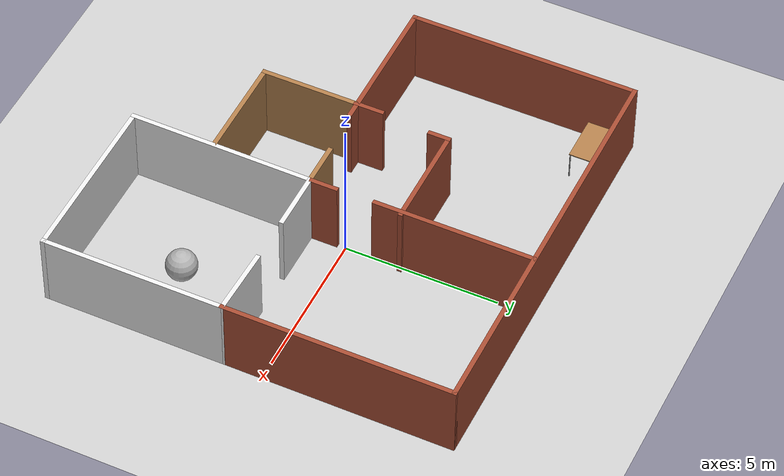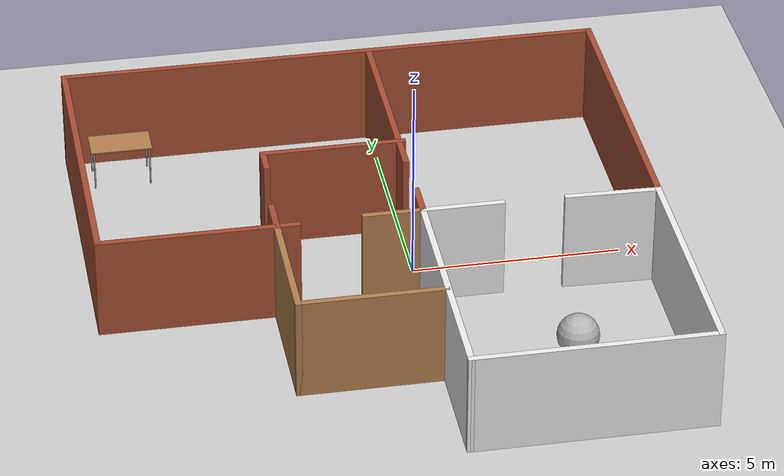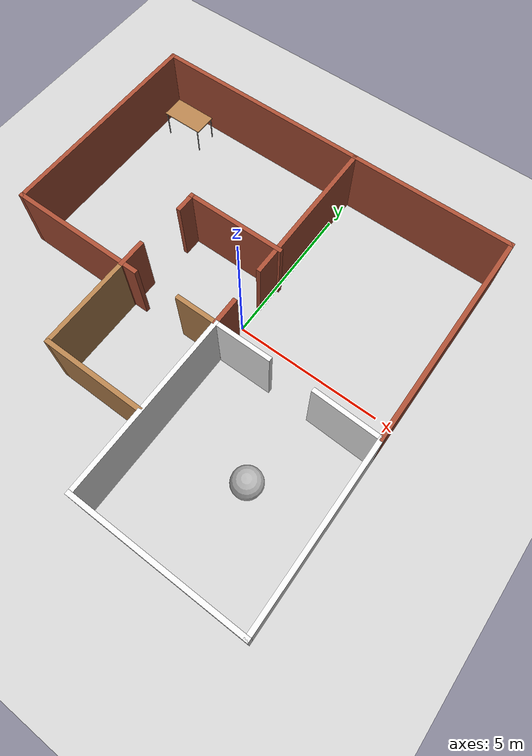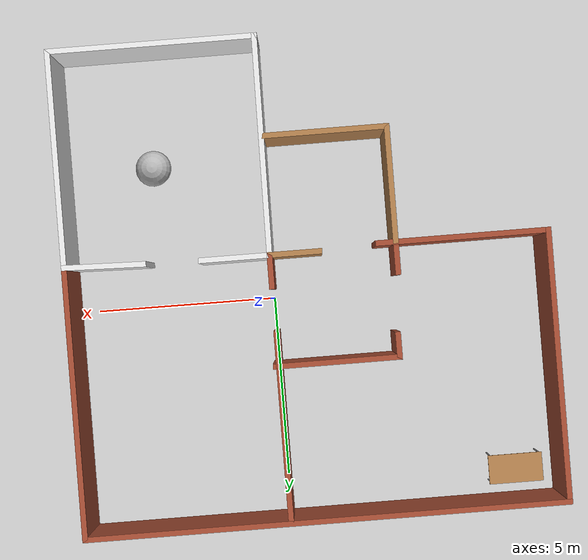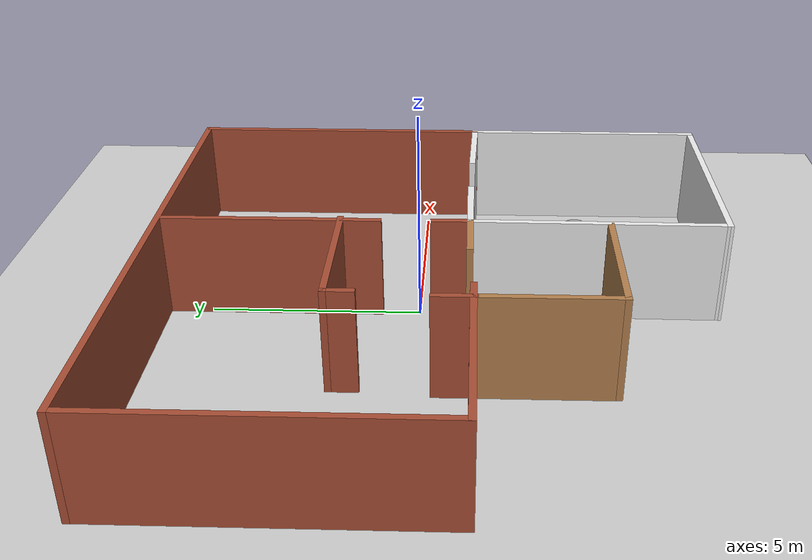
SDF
<sdf version="1.10">
 <world name="empty">
  <physics name="8ms" type="ode">
   <max_step_size>0.0080000000000000002</max_step_size>
   <real_time_factor>1</real_time_factor>
   <real_time_update_rate>125</real_time_update_rate>
  </physics>
  <plugin name="gz::sim::systems::Physics" filename="gz-sim-physics-system"/>
  <plugin name="gz::sim::systems::UserCommands" filename="gz-sim-user-commands-system"/>
  <plugin name="gz::sim::systems::SceneBroadcaster" filename="gz-sim-scene-broadcaster-system"/>
  <plugin name="gz::sim::systems::Contact" filename="gz-sim-contact-system"/>
  <plugin name="gz::sim::systems::Sensors" filename="gz-sim-sensors-system">
   <render_engine>ogre2</render_engine>
  </plugin>
  <plugin name="gz::sim::systems::Imu" filename="gz-sim-imu-system"/>
  <plugin name="gz::sim::systems::NavSat" filename="gz-sim-navsat-system"/>
  <spherical_coordinates>
   <surface_model>EARTH_WGS84</surface_model>
   <world_frame_orientation>ENU</world_frame_orientation>
   <latitude_deg>47.478949999999998</latitude_deg>
   <longitude_deg>19.057784999999999</longitude_deg>
   <elevation>0</elevation>
   <heading_deg>0</heading_deg>
  </spherical_coordinates>
  <gravity>0 0 -9.8000000000000007</gravity>
  <magnetic_field>5.5644999999999998e-06 2.2875799999999999e-05 -4.2388400000000002e-05</magnetic_field>
  <atmosphere type="adiabatic"/>
  <scene>
   <ambient>0.400000006 0.400000006 0.400000006 1</ambient>
   <background>0.699999988 0.699999988 0.699999988 1</background>
   <shadows>true</shadows>
  </scene>
  <model name="ground_plane">
   <static>true</static>
   <link name="link">
    <collision name="collision">
     <geometry><plane><normal>0 0 1</normal><size>100 100</size></plane></geometry>
     <surface><friction><ode><mu>50</mu></ode></friction></surface>
    </collision>
    <visual name="visual">
     <cast_shadows>false</cast_shadows>
     <geometry><plane><normal>0 0 1</normal><size>100 100</size></plane></geometry>
     <material>
      <script><uri>file://media/materials/scripts/gazebo.material</uri><name>Gazebo/Grey</name></script>
     </material>
    </visual>
    <inertial>
     <mass>1</mass>
     <inertia><ixx>1</ixx><ixy>0</ixy><ixz>0</ixz><iyy>1</iyy><iyz>0</iyz><izz>1</izz></inertia>
    </inertial>
   </link>
  </model>
  <model name="house">
   <pose>-0.99047399999999997 -0.51140300000000005 0 0 0 0</pose>
   <link name="Wall_1">
    <collision name="Wall_1_Collision">
     <geometry><box><size>13.25 0.14999999999999999 2.5</size></box></geometry>
     <pose>0 0 1.25 0 0 0</pose>
    </collision>
    <visual name="Wall_1_Visual">
     <pose>0 0 1.25 0 0 0</pose>
     <geometry><box><size>13.25 0.14999999999999999 2.5</size></box></geometry>
     <material>
      <script><uri>file://media/materials/scripts/gazebo.material</uri><name>Gazebo/Bricks</name></script>
      <pbr><metal><albedo_map>model://brick_box_3x1x3/materials/textures/simple_box.png</albedo_map></metal></pbr>
      <ambient>1 1 1 1</ambient>
     </material>
     <meta><layer>0</layer></meta>
    </visual>
    <pose>-0.001062 6.6002999999999998 0 0 0 0</pose>
    <inertial>
     <mass>1</mass>
     <inertia><ixx>1</ixx><ixy>0</ixy><ixz>0</ixz><iyy>1</iyy><iyz>0</iyz><izz>1</izz></inertia>
    </inertial>
   </link>
   <link name="Wall_10">
    <collision name="Wall_10_Collision">
     <geometry><box><size>6.0883399999999996 0.14999999999999999 2.5</size></box></geometry>
     <pose>0 0 1.25 0 0 0</pose>
    </collision>
    <visual name="Wall_10_Visual">
     <pose>0 0 1.25 0 0 0</pose>
     <geometry><box><size>6.0883399999999996 0.14999999999999999 2.5</size></box></geometry>
     <material>
      <script><uri>file://media/materials/scripts/gazebo.material</uri><name>Gazebo/White</name></script>
      <ambient>1 1 1 1</ambient>
     </material>
     <meta><layer>0</layer></meta>
    </visual>
    <pose>0.97286099999999998 -3.6306299999999991 0 0 0 -1.5788500000000005</pose>
    <inertial>
     <mass>1</mass>
     <inertia><ixx>1</ixx><ixy>0</ixy><ixz>0</ixz><iyy>1</iyy><iyz>0</iyz><izz>1</izz></inertia>
    </inertial>
   </link>
   <link name="Wall_12">
    <collision name="Wall_12_Collision">
     <geometry><box><size>2 0.14999999999999999 2.5</size></box></geometry>
     <pose>0 0 1.25 0 0 0</pose>
    </collision>
    <visual name="Wall_12_Visual">
     <pose>0 0 1.25 0 0 0</pose>
     <geometry><box><size>2 0.14999999999999999 2.5</size></box></geometry>
     <material>
      <script><uri>file://media/materials/scripts/gazebo.material</uri><name>Gazebo/White</name></script>
      <ambient>1 1 1 1</ambient>
     </material>
     <meta><layer>0</layer></meta>
    </visual>
    <pose>1.92178 -0.66155399999999909 0 0 0 0</pose>
    <inertial>
     <mass>1</mass>
     <inertia><ixx>1</ixx><ixy>0</ixy><ixz>0</ixz><iyy>1</iyy><iyz>0</iyz><izz>1</izz></inertia>
    </inertial>
   </link>
   <link name="Wall_14">
    <collision name="Wall_14_Collision">
     <geometry><box><size>2.2915999999999999 0.14999999999999999 2.5</size></box></geometry>
     <pose>0 0 1.25 0 0 0</pose>
    </collision>
    <visual name="Wall_14_Visual">
     <pose>0 0 1.25 0 0 0</pose>
     <geometry><box><size>2.2915999999999999 0.14999999999999999 2.5</size></box></geometry>
     <material>
      <script><uri>file://media/materials/scripts/gazebo.material</uri><name>Gazebo/White</name></script>
      <ambient>1 1 1 1</ambient>
     </material>
     <meta><layer>0</layer></meta>
    </visual>
    <pose>5.47858 -0.71892699999999898 0 0 0 -0.028742000000000021</pose>
    <inertial>
     <mass>1</mass>
     <inertia><ixx>1</ixx><ixy>0</ixy><ixz>0</ixz><iyy>1</iyy><iyz>0</iyz><izz>1</izz></inertia>
    </inertial>
   </link>
   <link name="Wall_17">
    <collision name="Wall_17_Collision">
     <geometry><box><size>3.5 0.14999999999999999 2.5</size></box></geometry>
     <pose>0 0 1.25 0 0 0</pose>
    </collision>
    <visual name="Wall_17_Visual">
     <pose>0 0 1.25 0 0 0</pose>
     <geometry><box><size>3.5 0.14999999999999999 2.5</size></box></geometry>
     <material>
      <script><uri>file://media/materials/scripts/gazebo.material</uri><name>Gazebo/Wood</name></script>
      <pbr><metal><albedo_map>model://Table/Table_Diffuse.jpg</albedo_map></metal></pbr>
      <ambient>1 1 1 1</ambient>
     </material>
     <meta><layer>0</layer></meta>
    </visual>
    <pose>-0.75140600000000013 -3.8801799999999993 0 0 0 3.1415899999999999</pose>
    <inertial>
     <mass>1</mass>
     <inertia><ixx>1</ixx><ixy>0</ixy><ixz>0</ixz><iyy>1</iyy><iyz>0</iyz><izz>1</izz></inertia>
    </inertial>
   </link>
   <link name="Wall_18">
    <collision name="Wall_18_Collision">
     <geometry><box><size>3.25 0.14999999999999999 2.5</size></box></geometry>
     <pose>0 0 1.25 0 0 0</pose>
    </collision>
    <visual name="Wall_18_Visual">
     <pose>0 0 1.25 0 0 0</pose>
     <geometry><box><size>3.25 0.14999999999999999 2.5</size></box></geometry>
     <material>
      <script><uri>file://media/materials/scripts/gazebo.material</uri><name>Gazebo/Wood</name></script>
      <pbr><metal><albedo_map>model://Table/Table_Diffuse.jpg</albedo_map></metal></pbr>
      <ambient>1 1 1 1</ambient>
     </material>
     <meta><layer>0</layer></meta>
    </visual>
    <pose>-2.4264100000000002 -2.330179999999999 0 0 0 1.5708000000000006</pose>
    <inertial>
     <mass>1</mass>
     <inertia><ixx>1</ixx><ixy>0</ixy><ixz>0</ixz><iyy>1</iyy><iyz>0</iyz><izz>1</izz></inertia>
    </inertial>
   </link>
   <link name="Wall_2">
    <collision name="Wall_2_Collision">
     <geometry><box><size>7.5 0.14999999999999999 2.5</size></box></geometry>
     <pose>0 0 1.25 0 0 0</pose>
    </collision>
    <visual name="Wall_2_Visual">
     <pose>0 0 1.25 0 0 0</pose>
     <geometry><box><size>7.5 0.14999999999999999 2.5</size></box></geometry>
     <material>
      <script><uri>file://media/materials/scripts/gazebo.material</uri><name>Gazebo/Bricks</name></script>
      <pbr><metal><albedo_map>model://brick_box_3x1x3/materials/textures/simple_box.png</albedo_map></metal></pbr>
      <ambient>1 1 1 1</ambient>
     </material>
     <meta><layer>0</layer></meta>
    </visual>
    <pose>6.54894 2.9253000000000009 0 0 0 -1.5708000000000006</pose>
    <inertial>
     <mass>1</mass>
     <inertia><ixx>1</ixx><ixy>0</ixy><ixz>0</ixz><iyy>1</iyy><iyz>0</iyz><izz>1</izz></inertia>
    </inertial>
   </link>
   <link name="Wall_20">
    <collision name="Wall_20_Collision">
     <geometry><box><size>1 0.14999999999999999 2.5</size></box></geometry>
     <pose>0 0 1.25 0 0 0</pose>
    </collision>
    <visual name="Wall_20_Visual">
     <pose>0 0 1.25 0 0 0</pose>
     <geometry><box><size>1 0.14999999999999999 2.5</size></box></geometry>
     <material>
      <script><uri>file://media/materials/scripts/gazebo.material</uri><name>Gazebo/Bricks</name></script>
      <pbr><metal><albedo_map>model://brick_box_3x1x3/materials/textures/simple_box.png</albedo_map></metal></pbr>
      <ambient>1 1 1 1</ambient>
     </material>
     <meta><layer>0</layer></meta>
    </visual>
    <pose>0.996784 -0.23655399999999904 0 0 0 1.5708000000000006</pose>
    <inertial>
     <mass>1</mass>
     <inertia><ixx>1</ixx><ixy>0</ixy><ixz>0</ixz><iyy>1</iyy><iyz>0</iyz><izz>1</izz></inertia>
    </inertial>
   </link>
   <link name="Wall_22">
    <collision name="Wall_22_Collision">
     <geometry><box><size>5.25 0.14999999999999999 2.5</size></box></geometry>
     <pose>0 0 1.25 0 0 0</pose>
    </collision>
    <visual name="Wall_22_Visual">
     <pose>0 0 1.25 0 0 0</pose>
     <geometry><box><size>5.25 0.14999999999999999 2.5</size></box></geometry>
     <material>
      <script><uri>file://media/materials/scripts/gazebo.material</uri><name>Gazebo/Bricks</name></script>
      <pbr><metal><albedo_map>model://brick_box_3x1x3/materials/textures/simple_box.png</albedo_map></metal></pbr>
      <ambient>1 1 1 1</ambient>
     </material>
     <meta><layer>0</layer></meta>
    </visual>
    <pose>0.97679400000000005 4.0164600000000013 0 0 0 1.5708000000000006</pose>
    <inertial>
     <mass>1</mass>
     <inertia><ixx>1</ixx><ixy>0</ixy><ixz>0</ixz><iyy>1</iyy><iyz>0</iyz><izz>1</izz></inertia>
    </inertial>
   </link>
   <link name="Wall_24">
    <collision name="Wall_24_Collision">
     <geometry><box><size>3.5 0.14999999999999999 2.5</size></box></geometry>
     <pose>0 0 1.25 0 0 0</pose>
    </collision>
    <visual name="Wall_24_Visual">
     <pose>0 0 1.25 0 0 0</pose>
     <geometry><box><size>3.5 0.14999999999999999 2.5</size></box></geometry>
     <material>
      <script><uri>file://media/materials/scripts/gazebo.material</uri><name>Gazebo/Bricks</name></script>
      <pbr><metal><albedo_map>model://brick_box_3x1x3/materials/textures/simple_box.png</albedo_map></metal></pbr>
      <ambient>1 1 1 1</ambient>
     </material>
     <meta><layer>0</layer></meta>
    </visual>
    <pose>-0.6139119999999999 2.3486400000000009 0 0 0 3.1415899999999999</pose>
    <inertial>
     <mass>1</mass>
     <inertia><ixx>1</ixx><ixy>0</ixy><ixz>0</ixz><iyy>1</iyy><iyz>0</iyz><izz>1</izz></inertia>
    </inertial>
   </link>
   <link name="Wall_25">
    <collision name="Wall_25_Collision">
     <geometry><box><size>0.75 0.14999999999999999 2.5</size></box></geometry>
     <pose>0 0 1.25 0 0 0</pose>
    </collision>
    <visual name="Wall_25_Visual">
     <pose>0 0 1.25 0 0 0</pose>
     <geometry><box><size>0.75 0.14999999999999999 2.5</size></box></geometry>
     <material>
      <script><uri>file://media/materials/scripts/gazebo.material</uri><name>Gazebo/Bricks</name></script>
      <pbr><metal><albedo_map>model://brick_box_3x1x3/materials/textures/simple_box.png</albedo_map></metal></pbr>
      <ambient>1 1 1 1</ambient>
     </material>
     <meta><layer>0</layer></meta>
    </visual>
    <pose>-2.28891 2.0486400000000007 0 0 0 -1.5708000000000006</pose>
    <inertial>
     <mass>1</mass>
     <inertia><ixx>1</ixx><ixy>0</ixy><ixz>0</ixz><iyy>1</iyy><iyz>0</iyz><izz>1</izz></inertia>
    </inertial>
   </link>
   <link name="Wall_27">
    <collision name="Wall_27_Collision">
     <geometry><box><size>1 0.14999999999999999 2.5</size></box></geometry>
     <pose>0 0 1.25 0 0 0</pose>
    </collision>
    <visual name="Wall_27_Visual">
     <pose>0 0 1.25 0 0 0</pose>
     <geometry><box><size>1 0.14999999999999999 2.5</size></box></geometry>
     <material>
      <script><uri>file://media/materials/scripts/gazebo.material</uri><name>Gazebo/Bricks</name></script>
      <pbr><metal><albedo_map>model://brick_box_3x1x3/materials/textures/simple_box.png</albedo_map></metal></pbr>
      <ambient>1 1 1 1</ambient>
     </material>
     <meta><layer>0</layer></meta>
    </visual>
    <pose>-2.4264100000000002 -0.35517799999999911 0 0 0 1.5708000000000006</pose>
    <inertial>
     <mass>1</mass>
     <inertia><ixx>1</ixx><ixy>0</ixy><ixz>0</ixz><iyy>1</iyy><iyz>0</iyz><izz>1</izz></inertia>
    </inertial>
   </link>
   <link name="Wall_3">
    <collision name="Wall_3_Collision">
     <geometry><box><size>6 0.14999999999999999 2.5</size></box></geometry>
     <pose>0 0 1.25 0 0 0</pose>
    </collision>
    <visual name="Wall_3_Visual">
     <pose>0 0 1.25 0 0 0</pose>
     <geometry><box><size>6 0.14999999999999999 2.5</size></box></geometry>
     <material>
      <script><uri>file://media/materials/scripts/gazebo.material</uri><name>Gazebo/White</name></script>
      <ambient>1 1 1 1</ambient>
     </material>
     <meta><layer>0</layer></meta>
    </visual>
    <pose>6.54894 -3.6746999999999987 0 0 0 -1.5708000000000006</pose>
    <inertial>
     <mass>1</mass>
     <inertia><ixx>1</ixx><ixy>0</ixy><ixz>0</ixz><iyy>1</iyy><iyz>0</iyz><izz>1</izz></inertia>
    </inertial>
   </link>
   <link name="Wall_4">
    <collision name="Wall_4_Collision">
     <geometry><box><size>5.75 0.14999999999999999 2.5</size></box></geometry>
     <pose>0 0 1.25 0 0 0</pose>
    </collision>
    <visual name="Wall_4_Visual">
     <pose>0 0 1.25 0 0 0</pose>
     <geometry><box><size>5.75 0.14999999999999999 2.5</size></box></geometry>
     <material>
      <script><uri>file://media/materials/scripts/gazebo.material</uri><name>Gazebo/White</name></script>
      <ambient>1 1 1 1</ambient>
     </material>
     <meta><layer>0</layer></meta>
    </visual>
    <pose>3.7489400000000002 -6.5996999999999995 0 0 0 3.1415899999999999</pose>
    <inertial>
     <mass>1</mass>
     <inertia><ixx>1</ixx><ixy>0</ixy><ixz>0</ixz><iyy>1</iyy><iyz>0</iyz><izz>1</izz></inertia>
    </inertial>
   </link>
   <link name="Wall_6">
    <collision name="Wall_6_Collision">
     <geometry><box><size>7.5 0.14999999999999999 2.5</size></box></geometry>
     <pose>0 0 1.25 0 0 0</pose>
    </collision>
    <visual name="Wall_6_Visual">
     <pose>0 0 1.25 0 0 0</pose>
     <geometry><box><size>7.5 0.14999999999999999 2.5</size></box></geometry>
     <material>
      <script><uri>file://media/materials/scripts/gazebo.material</uri><name>Gazebo/Bricks</name></script>
      <pbr><metal><albedo_map>model://brick_box_3x1x3/materials/textures/simple_box.png</albedo_map></metal></pbr>
      <ambient>1 1 1 1</ambient>
     </material>
     <meta><layer>0</layer></meta>
    </visual>
    <pose>-6.5510599999999997 2.9253000000000009 0 0 0 -1.5708000000000006</pose>
    <inertial>
     <mass>1</mass>
     <inertia><ixx>1</ixx><ixy>0</ixy><ixz>0</ixz><iyy>1</iyy><iyz>0</iyz><izz>1</izz></inertia>
    </inertial>
   </link>
   <link name="Wall_7">
    <collision name="Wall_7_Collision">
     <geometry><box><size>4.75 0.14999999999999999 2.5</size></box></geometry>
     <pose>0 0 1.25 0 0 0</pose>
    </collision>
    <visual name="Wall_7_Visual">
     <pose>0 0 1.25 0 0 0</pose>
     <geometry><box><size>4.75 0.14999999999999999 2.5</size></box></geometry>
     <material>
      <script><uri>file://media/materials/scripts/gazebo.material</uri><name>Gazebo/Bricks</name></script>
      <pbr><metal><albedo_map>model://brick_box_3x1x3/materials/textures/simple_box.png</albedo_map></metal></pbr>
      <ambient>1 1 1 1</ambient>
     </material>
     <meta><layer>0</layer></meta>
    </visual>
    <pose>-4.2510599999999998 -0.74969899999999923 0 0 0 0</pose>
    <inertial>
     <mass>1</mass>
     <inertia><ixx>1</ixx><ixy>0</ixy><ixz>0</ixz><iyy>1</iyy><iyz>0</iyz><izz>1</izz></inertia>
    </inertial>
   </link>
   <link name="Wall_9">
    <collision name="Wall_9_Collision">
     <geometry><box><size>1.5 0.14999999999999999 2.5</size></box></geometry>
     <pose>0 0 1.25 0 0 0</pose>
    </collision>
    <visual name="Wall_9_Visual">
     <pose>0 0 1.25 0 0 0</pose>
     <geometry><box><size>1.5 0.14999999999999999 2.5</size></box></geometry>
     <material>
      <script><uri>file://media/materials/scripts/gazebo.material</uri><name>Gazebo/Wood</name></script>
      <pbr><metal><albedo_map>model://Table/Table_Diffuse.jpg</albedo_map></metal></pbr>
      <ambient>1 1 1 1</ambient>
     </material>
     <meta><layer>0</layer></meta>
    </visual>
    <pose>0.32178399999999996 -0.66155399999999909 0 0 0 0</pose>
    <inertial>
     <mass>1</mass>
     <inertia><ixx>1</ixx><ixy>0</ixy><ixz>0</ixz><iyy>1</iyy><iyz>0</iyz><izz>1</izz></inertia>
    </inertial>
   </link>
   <static>true</static>
  </model>
  <model name="table">
   <static>true</static>
   <link name="link">
    <collision name="surface">
     <pose>0 0 1 0 0 0</pose>
     <geometry><box><size>1.5 0.80000000000000004 0.029999999999999999</size></box></geometry>
     <surface><friction><ode><mu>0.59999999999999998</mu><mu2>0.59999999999999998</mu2></ode></friction></surface>
    </collision>
    <visual name="visual1">
     <pose>0 0 1 0 0 0</pose>
     <geometry><box><size>1.5 0.80000000000000004 0.029999999999999999</size></box></geometry>
     <material>
      <script><uri>file://media/materials/scripts/gazebo.material</uri><name>Gazebo/Wood</name></script>
      <pbr><metal><albedo_map>model://Table/Table_Diffuse.jpg</albedo_map></metal></pbr>
     </material>
    </visual>
    <collision name="front_left_leg">
     <pose>0.68000000000000005 0.38 0.5 0 0 0</pose>
     <geometry><cylinder><radius>0.02</radius><length>1</length></cylinder></geometry>
    </collision>
    <visual name="front_left_leg">
     <pose>0.68000000000000005 0.38 0.5 0 0 0</pose>
     <geometry><cylinder><radius>0.02</radius><length>1</length></cylinder></geometry>
     <material>
      <script><uri>file://media/materials/scripts/gazebo.material</uri><name>Gazebo/Grey</name></script>
     </material>
    </visual>
    <collision name="front_right_leg">
     <pose>0.68000000000000005 -0.38 0.5 0 0 0</pose>
     <geometry><cylinder><radius>0.02</radius><length>1</length></cylinder></geometry>
    </collision>
    <visual name="front_right_leg">
     <pose>0.68000000000000005 -0.38 0.5 0 0 0</pose>
     <geometry><cylinder><radius>0.02</radius><length>1</length></cylinder></geometry>
     <material>
      <script><uri>file://media/materials/scripts/gazebo.material</uri><name>Gazebo/Grey</name></script>
     </material>
    </visual>
    <collision name="back_right_leg">
     <pose>-0.68000000000000005 -0.38 0.5 0 0 0</pose>
     <geometry><cylinder><radius>0.02</radius><length>1</length></cylinder></geometry>
    </collision>
    <visual name="back_right_leg">
     <pose>-0.68000000000000005 -0.38 0.5 0 0 0</pose>
     <geometry><cylinder><radius>0.02</radius><length>1</length></cylinder></geometry>
     <material>
      <script><uri>file://media/materials/scripts/gazebo.material</uri><name>Gazebo/Grey</name></script>
     </material>
    </visual>
    <collision name="back_left_leg">
     <pose>-0.68000000000000005 0.38 0.5 0 0 0</pose>
     <geometry><cylinder><radius>0.02</radius><length>1</length></cylinder></geometry>
    </collision>
    <visual name="back_left_leg">
     <pose>-0.68000000000000005 0.38 0.5 0 0 0</pose>
     <geometry><cylinder><radius>0.02</radius><length>1</length></cylinder></geometry>
     <material>
      <script><uri>file://media/materials/scripts/gazebo.material</uri><name>Gazebo/Grey</name></script>
     </material>
    </visual>
    <inertial>
     <mass>1</mass>
     <inertia><ixx>1</ixx><ixy>0</ixy><ixz>0</ixz><iyy>1</iyy><iyz>0</iyz><izz>1</izz></inertia>
    </inertial>
   </link>
   <pose>-6.3307700000000002 5.24594 0 0 0 0</pose>
  </model>
  <model name="sphere">
   <pose>3.1173294966526437 -3.9112952401670675 0.4999999937280627 0 0 0</pose>
   <link name="sphere_link">
    <inertial>
     <inertia>
      <ixx>0.10000000000000001</ixx>
      <ixy>0</ixy>
      <ixz>0</ixz>
      <iyy>0.10000000000000001</iyy>
      <iyz>0</iyz>
      <izz>0.10000000000000001</izz>
     </inertia>
     <mass>1</mass>
    </inertial>
    <collision name="sphere_collision"><geometry><sphere><radius>0.5</radius></sphere></geometry></collision>
    <visual name="sphere_visual">
     <geometry><sphere><radius>0.5</radius></sphere></geometry>
     <material>
      <ambient>0.300000012 0.300000012 0.300000012 1</ambient>
      <diffuse>0.699999988 0.699999988 0.699999988 1</diffuse>
      <specular>1 1 1 1</specular>
     </material>
    </visual>
   </link>
   <static>false</static>
  </model>
  <light name="sun" type="directional">
   <pose>0 0 10 0 0 0</pose>
   <intensity>1</intensity>
   <direction>-0.5 0.10000000000000001 -0.90000000000000002</direction>
   <diffuse>0.800000012 0.800000012 0.800000012 1</diffuse>
   <specular>0.200000003 0.200000003 0.200000003 1</specular>
   <attenuation>
    <range>1000</range>
    <linear>0.0099999997764825821</linear>
    <constant>0.89999997615814209</constant>
    <quadratic>0.0010000000474974513</quadratic>
   </attenuation>
   <spot><inner_angle>0</inner_angle><outer_angle>0</outer_angle><falloff>0</falloff></spot>
  </light>
 </world>
</sdf>
